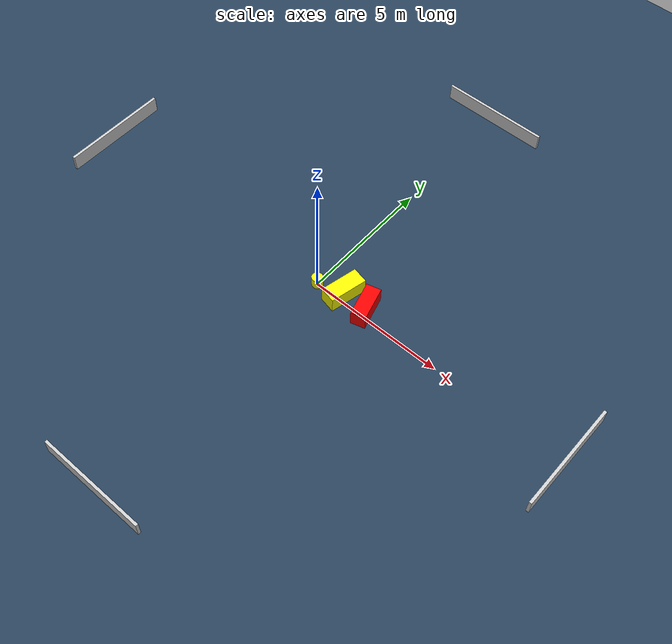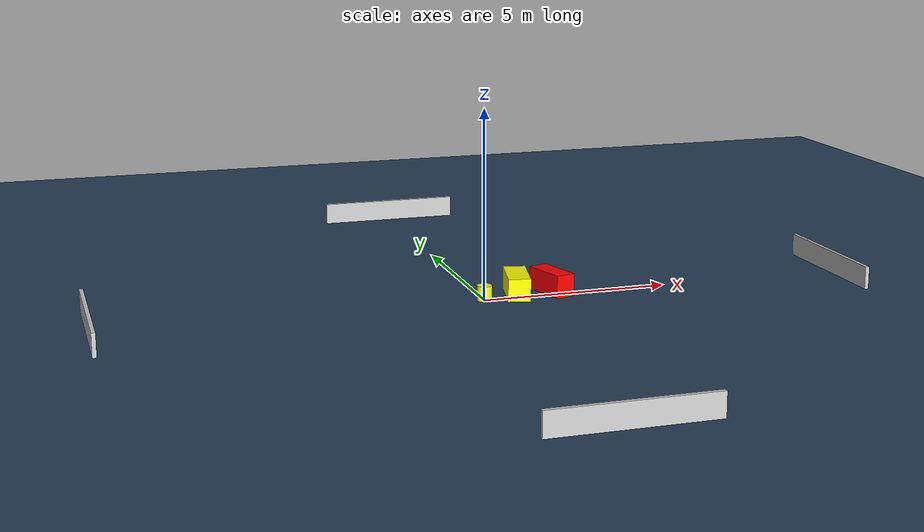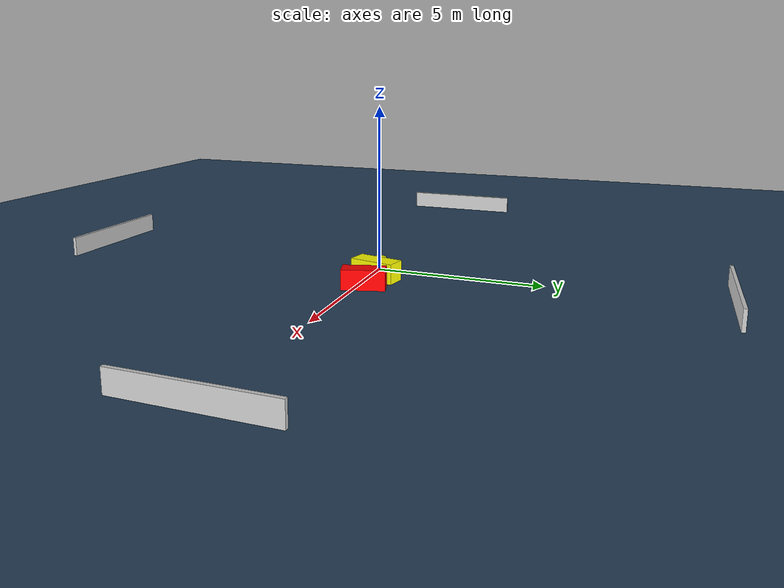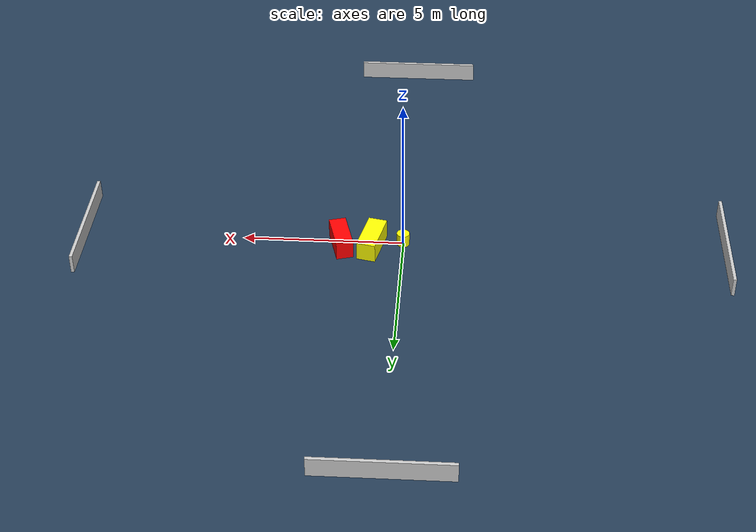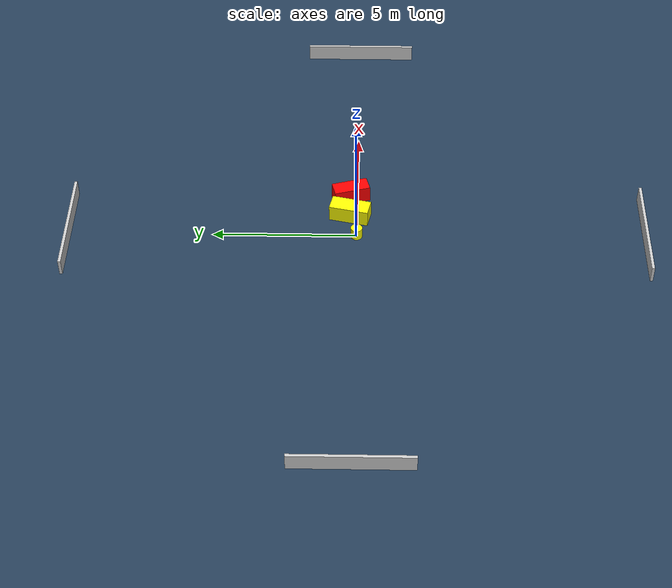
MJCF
<?xml version="1.0" ?>
<mujoco model="generated_environment">
  <option timestep="0.01" integrator="RK4" cone="elliptic"/>
  <default>
    <geom density="1"/>
  </default>
  <asset>
    <texture builtin="gradient" height="3072" name="skybox" rgb1="0.3 0.5 0.7" rgb2="0 0 0" type="skybox" width="512"/>
    <texture builtin="checker" height="300" name="groundplane" rgb1="0.2 0.3 0.4" rgb2="0.1 0.2 0.3" type="2d" width="300"/>
    <material name="groundplane" reflectance="0.2" texrepeat="5 5" texture="groundplane"/>
  </asset>
  <worldbody>
    <light dir="0 0 -1" directional="true" pos="0 0 1.5"/>
    <geom condim="3" friction="0.5 0.005 0.001" material="groundplane" name="floor" pos="0 0 0" size="0 0 0.05" type="plane"/>
    <body name="walls">
      <geom name="wall_1" condim="4" pos="-10.0 0.0 0.3" rgba="0.800000011920929 0.800000011920929 0.800000011920929 1.0" size="0.05 2.0 0.3" type="box"/>
      <geom name="wall_2" condim="4" pos="10.0 0.0 0.3" rgba="0.800000011920929 0.800000011920929 0.800000011920929 1.0" size="0.05 2.0 0.3" type="box"/>
      <geom name="wall_3" condim="4" pos="0.0 -10.0 0.3" rgba="0.800000011920929 0.800000011920929 0.800000011920929 1.0" size="2.0 0.05 0.3" type="box"/>
      <geom name="wall_4" condim="4" pos="0.0 10.0 0.3" rgba="0.800000011920929 0.800000011920929 0.800000011920929 1.0" size="2.0 0.05 0.3" type="box"/>
    </body>
    <body name="robot">
      <joint name="joint_x" type="slide" pos="0 0 0" axis="1 0 0"/>
      <joint name="joint_y" type="slide" pos="0 0 0" axis="0 1 0"/>
      <geom name="robot" type="cylinder" pos="0.0 0.0 0.2" size="0.2 0.2 0.0" mass="5.0" friction="1.0 0.005 0.0001" condim="4" rgba="1.0 1.0 0.0 1.0"/>
    </body>
    <body name="obstacle_1_movable">
      <geom name="obstacle_1_movable" condim="4" pos="0.9597510771516218 0.2401194073842392 0.3" euler="0 0 347.56474583199974" friction="0.0 0.005 0.001" rgba="1.0 1.0 0.0 1.0" size="0.2949173650209218 0.6879292607207834 0.3" type="box" mass="0.1"/>
      <joint type="free"/>
    </body>
    <body name="obstacle_2_static">
      <geom name="obstacle_2_static" condim="4" pos="1.9241126298120304 0.23265151377274088 0.3" euler="0 0 285.4597243107089" friction="0.0 0.005 0.001" rgba="1.0 0.0 0.0 1.0" size="0.6319618011896699 0.2655366885361329 0.3" type="box"/>
    </body>
  </worldbody>
  <actuator>
    <motor name="actuator_x" joint="joint_x" gear="1" ctrlrange="-1 1"/>
    <motor name="actuator_y" joint="joint_y" gear="1" ctrlrange="-1 1"/>
  </actuator>
</mujoco>
